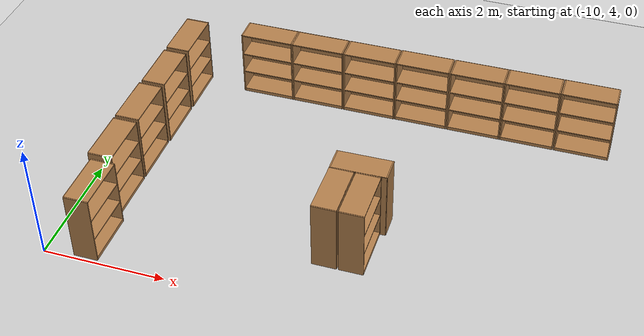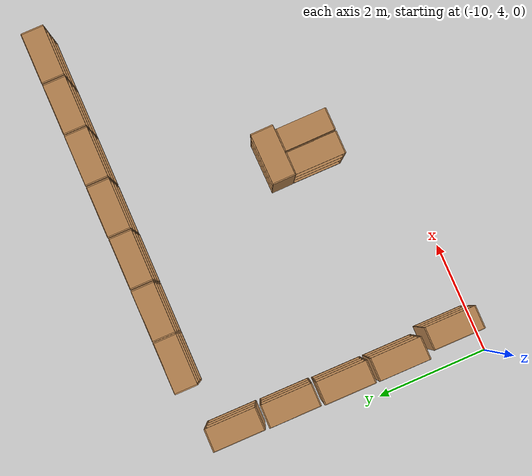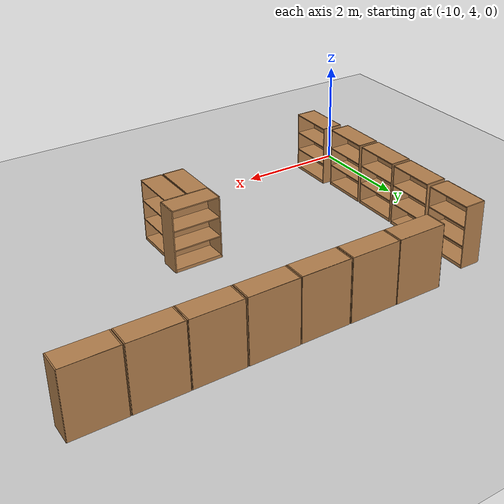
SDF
<sdf version="1.7">
 <world name="default">
  <model name="ground_plane">
   <static>1</static>
   <link name="link">
    <collision name="collision">
     <geometry><plane><normal>0 0 1</normal><size>100 100</size></plane></geometry>
     <surface><friction><ode><mu>100</mu><mu2>50</mu2></ode></friction></surface>
    </collision>
    <visual name="visual">
     <cast_shadows>0</cast_shadows>
     <geometry><plane><normal>0 0 1</normal><size>100 100</size></plane></geometry>
     <material>
      <script><uri>file://media/materials/scripts/gazebo.material</uri><name>Gazebo/Grey</name></script>
     </material>
    </visual>
   </link>
  </model>
  <model name="bookshelf_clone">
   <static>1</static>
   <link name="link">
    <inertial><mass>1</mass></inertial>
    <collision name="back">
     <pose>0 0.005 0.6 0 -0 0</pose>
     <geometry><box><size>0.9 0.01 1.2</size></box></geometry>
    </collision>
    <visual name="visual1">
     <pose>0 0.005 0.6 0 -0 0</pose>
     <geometry><box><size>0.9 0.01 1.2</size></box></geometry>
     <material>
      <script><uri>file://media/materials/scripts/gazebo.material</uri><name>Gazebo/Wood</name></script>
     </material>
    </visual>
    <collision name="left_side">
     <pose>0.45 -0.195 0.6 0 -0 0</pose>
     <geometry><box><size>0.02 0.4 1.2</size></box></geometry>
    </collision>
    <visual name="visual2">
     <pose>0.45 -0.195 0.6 0 -0 0</pose>
     <geometry><box><size>0.02 0.4 1.2</size></box></geometry>
     <material>
      <script><uri>file://media/materials/scripts/gazebo.material</uri><name>Gazebo/Wood</name></script>
     </material>
    </visual>
    <collision name="right_side">
     <pose>-0.45 -0.195 0.6 0 -0 0</pose>
     <geometry><box><size>0.02 0.4 1.2</size></box></geometry>
    </collision>
    <visual name="visual3">
     <pose>-0.45 -0.195 0.6 0 -0 0</pose>
     <geometry><box><size>0.02 0.4 1.2</size></box></geometry>
     <material>
      <script><uri>file://media/materials/scripts/gazebo.material</uri><name>Gazebo/Wood</name></script>
     </material>
    </visual>
    <collision name="bottom">
     <pose>0 -0.195 0.03 0 -0 0</pose>
     <geometry><box><size>0.88 0.4 0.06</size></box></geometry>
    </collision>
    <visual name="visual4">
     <pose>0 -0.195 0.03 0 -0 0</pose>
     <geometry><box><size>0.88 0.4 0.06</size></box></geometry>
     <material>
      <script><uri>file://media/materials/scripts/gazebo.material</uri><name>Gazebo/Wood</name></script>
     </material>
    </visual>
    <collision name="top">
     <pose>0 -0.195 1.19 0 -0 0</pose>
     <geometry><box><size>0.88 0.4 0.02</size></box></geometry>
    </collision>
    <visual name="visual5">
     <pose>0 -0.195 1.19 0 -0 0</pose>
     <geometry><box><size>0.88 0.4 0.02</size></box></geometry>
     <material>
      <script><uri>file://media/materials/scripts/gazebo.material</uri><name>Gazebo/Wood</name></script>
     </material>
    </visual>
    <collision name="low_shelf">
     <pose>0 -0.195 0.43 0 -0 0</pose>
     <geometry><box><size>0.88 0.4 0.02</size></box></geometry>
    </collision>
    <visual name="visual6">
     <pose>0 -0.195 0.43 0 -0 0</pose>
     <geometry><box><size>0.88 0.4 0.02</size></box></geometry>
     <material>
      <script><uri>file://media/materials/scripts/gazebo.material</uri><name>Gazebo/Wood</name></script>
     </material>
    </visual>
    <collision name="high_shelf">
     <pose>0 -0.195 0.8 0 -0 0</pose>
     <geometry><box><size>0.88 0.4 0.02</size></box></geometry>
    </collision>
    <visual name="visual7">
     <pose>0 -0.195 0.8 0 -0 0</pose>
     <geometry><box><size>0.88 0.4 0.02</size></box></geometry>
     <material>
      <script><uri>file://media/materials/scripts/gazebo.material</uri><name>Gazebo/Wood</name></script>
     </material>
    </visual>
   </link>
   <pose>-6.18598 9.11437 0 0 -0 0</pose>
  </model>
  <model name="bookshelf_clone_0_clone_0_clone_clone_6">
   <static>1</static>
   <link name="link">
    <inertial><mass>1</mass></inertial>
    <collision name="back">
     <pose>0 0.005 0.6 0 -0 0</pose>
     <geometry><box><size>0.9 0.01 1.2</size></box></geometry>
    </collision>
    <visual name="visual1">
     <pose>0 0.005 0.6 0 -0 0</pose>
     <geometry><box><size>0.9 0.01 1.2</size></box></geometry>
     <material>
      <script><uri>file://media/materials/scripts/gazebo.material</uri><name>Gazebo/Wood</name></script>
     </material>
    </visual>
    <collision name="left_side">
     <pose>0.45 -0.195 0.6 0 -0 0</pose>
     <geometry><box><size>0.02 0.4 1.2</size></box></geometry>
    </collision>
    <visual name="visual2">
     <pose>0.45 -0.195 0.6 0 -0 0</pose>
     <geometry><box><size>0.02 0.4 1.2</size></box></geometry>
     <material>
      <script><uri>file://media/materials/scripts/gazebo.material</uri><name>Gazebo/Wood</name></script>
     </material>
    </visual>
    <collision name="right_side">
     <pose>-0.45 -0.195 0.6 0 -0 0</pose>
     <geometry><box><size>0.02 0.4 1.2</size></box></geometry>
    </collision>
    <visual name="visual3">
     <pose>-0.45 -0.195 0.6 0 -0 0</pose>
     <geometry><box><size>0.02 0.4 1.2</size></box></geometry>
     <material>
      <script><uri>file://media/materials/scripts/gazebo.material</uri><name>Gazebo/Wood</name></script>
     </material>
    </visual>
    <collision name="bottom">
     <pose>0 -0.195 0.03 0 -0 0</pose>
     <geometry><box><size>0.88 0.4 0.06</size></box></geometry>
    </collision>
    <visual name="visual4">
     <pose>0 -0.195 0.03 0 -0 0</pose>
     <geometry><box><size>0.88 0.4 0.06</size></box></geometry>
     <material>
      <script><uri>file://media/materials/scripts/gazebo.material</uri><name>Gazebo/Wood</name></script>
     </material>
    </visual>
    <collision name="top">
     <pose>0 -0.195 1.19 0 -0 0</pose>
     <geometry><box><size>0.88 0.4 0.02</size></box></geometry>
    </collision>
    <visual name="visual5">
     <pose>0 -0.195 1.19 0 -0 0</pose>
     <geometry><box><size>0.88 0.4 0.02</size></box></geometry>
     <material>
      <script><uri>file://media/materials/scripts/gazebo.material</uri><name>Gazebo/Wood</name></script>
     </material>
    </visual>
    <collision name="low_shelf">
     <pose>0 -0.195 0.43 0 -0 0</pose>
     <geometry><box><size>0.88 0.4 0.02</size></box></geometry>
    </collision>
    <visual name="visual6">
     <pose>0 -0.195 0.43 0 -0 0</pose>
     <geometry><box><size>0.88 0.4 0.02</size></box></geometry>
     <material>
      <script><uri>file://media/materials/scripts/gazebo.material</uri><name>Gazebo/Wood</name></script>
     </material>
    </visual>
    <collision name="high_shelf">
     <pose>0 -0.195 0.8 0 -0 0</pose>
     <geometry><box><size>0.88 0.4 0.02</size></box></geometry>
    </collision>
    <visual name="visual7">
     <pose>0 -0.195 0.8 0 -0 0</pose>
     <geometry><box><size>0.88 0.4 0.02</size></box></geometry>
     <material>
      <script><uri>file://media/materials/scripts/gazebo.material</uri><name>Gazebo/Wood</name></script>
     </material>
    </visual>
   </link>
   <pose>-9.5191 4.52003 0 0 -0 1.56663</pose>
  </model>
  <model name="bookshelf_clone_0_clone_0_clone_clone_7">
   <static>1</static>
   <link name="link">
    <inertial><mass>1</mass></inertial>
    <collision name="back">
     <pose>0 0.005 0.6 0 -0 0</pose>
     <geometry><box><size>0.9 0.01 1.2</size></box></geometry>
    </collision>
    <visual name="visual1">
     <pose>0 0.005 0.6 0 -0 0</pose>
     <geometry><box><size>0.9 0.01 1.2</size></box></geometry>
     <material>
      <script><uri>file://media/materials/scripts/gazebo.material</uri><name>Gazebo/Wood</name></script>
     </material>
    </visual>
    <collision name="left_side">
     <pose>0.45 -0.195 0.6 0 -0 0</pose>
     <geometry><box><size>0.02 0.4 1.2</size></box></geometry>
    </collision>
    <visual name="visual2">
     <pose>0.45 -0.195 0.6 0 -0 0</pose>
     <geometry><box><size>0.02 0.4 1.2</size></box></geometry>
     <material>
      <script><uri>file://media/materials/scripts/gazebo.material</uri><name>Gazebo/Wood</name></script>
     </material>
    </visual>
    <collision name="right_side">
     <pose>-0.45 -0.195 0.6 0 -0 0</pose>
     <geometry><box><size>0.02 0.4 1.2</size></box></geometry>
    </collision>
    <visual name="visual3">
     <pose>-0.45 -0.195 0.6 0 -0 0</pose>
     <geometry><box><size>0.02 0.4 1.2</size></box></geometry>
     <material>
      <script><uri>file://media/materials/scripts/gazebo.material</uri><name>Gazebo/Wood</name></script>
     </material>
    </visual>
    <collision name="bottom">
     <pose>0 -0.195 0.03 0 -0 0</pose>
     <geometry><box><size>0.88 0.4 0.06</size></box></geometry>
    </collision>
    <visual name="visual4">
     <pose>0 -0.195 0.03 0 -0 0</pose>
     <geometry><box><size>0.88 0.4 0.06</size></box></geometry>
     <material>
      <script><uri>file://media/materials/scripts/gazebo.material</uri><name>Gazebo/Wood</name></script>
     </material>
    </visual>
    <collision name="top">
     <pose>0 -0.195 1.19 0 -0 0</pose>
     <geometry><box><size>0.88 0.4 0.02</size></box></geometry>
    </collision>
    <visual name="visual5">
     <pose>0 -0.195 1.19 0 -0 0</pose>
     <geometry><box><size>0.88 0.4 0.02</size></box></geometry>
     <material>
      <script><uri>file://media/materials/scripts/gazebo.material</uri><name>Gazebo/Wood</name></script>
     </material>
    </visual>
    <collision name="low_shelf">
     <pose>0 -0.195 0.43 0 -0 0</pose>
     <geometry><box><size>0.88 0.4 0.02</size></box></geometry>
    </collision>
    <visual name="visual6">
     <pose>0 -0.195 0.43 0 -0 0</pose>
     <geometry><box><size>0.88 0.4 0.02</size></box></geometry>
     <material>
      <script><uri>file://media/materials/scripts/gazebo.material</uri><name>Gazebo/Wood</name></script>
     </material>
    </visual>
    <collision name="high_shelf">
     <pose>0 -0.195 0.8 0 -0 0</pose>
     <geometry><box><size>0.88 0.4 0.02</size></box></geometry>
    </collision>
    <visual name="visual7">
     <pose>0 -0.195 0.8 0 -0 0</pose>
     <geometry><box><size>0.88 0.4 0.02</size></box></geometry>
     <material>
      <script><uri>file://media/materials/scripts/gazebo.material</uri><name>Gazebo/Wood</name></script>
     </material>
    </visual>
   </link>
   <pose>-9.62218 5.53679 0 0 -0 1.56663</pose>
  </model>
  <model name="bookshelf_clone_0_clone_0_clone_clone_8">
   <static>1</static>
   <link name="link">
    <inertial><mass>1</mass></inertial>
    <collision name="back">
     <pose>0 0.005 0.6 0 -0 0</pose>
     <geometry><box><size>0.9 0.01 1.2</size></box></geometry>
    </collision>
    <visual name="visual1">
     <pose>0 0.005 0.6 0 -0 0</pose>
     <geometry><box><size>0.9 0.01 1.2</size></box></geometry>
     <material>
      <script><uri>file://media/materials/scripts/gazebo.material</uri><name>Gazebo/Wood</name></script>
     </material>
    </visual>
    <collision name="left_side">
     <pose>0.45 -0.195 0.6 0 -0 0</pose>
     <geometry><box><size>0.02 0.4 1.2</size></box></geometry>
    </collision>
    <visual name="visual2">
     <pose>0.45 -0.195 0.6 0 -0 0</pose>
     <geometry><box><size>0.02 0.4 1.2</size></box></geometry>
     <material>
      <script><uri>file://media/materials/scripts/gazebo.material</uri><name>Gazebo/Wood</name></script>
     </material>
    </visual>
    <collision name="right_side">
     <pose>-0.45 -0.195 0.6 0 -0 0</pose>
     <geometry><box><size>0.02 0.4 1.2</size></box></geometry>
    </collision>
    <visual name="visual3">
     <pose>-0.45 -0.195 0.6 0 -0 0</pose>
     <geometry><box><size>0.02 0.4 1.2</size></box></geometry>
     <material>
      <script><uri>file://media/materials/scripts/gazebo.material</uri><name>Gazebo/Wood</name></script>
     </material>
    </visual>
    <collision name="bottom">
     <pose>0 -0.195 0.03 0 -0 0</pose>
     <geometry><box><size>0.88 0.4 0.06</size></box></geometry>
    </collision>
    <visual name="visual4">
     <pose>0 -0.195 0.03 0 -0 0</pose>
     <geometry><box><size>0.88 0.4 0.06</size></box></geometry>
     <material>
      <script><uri>file://media/materials/scripts/gazebo.material</uri><name>Gazebo/Wood</name></script>
     </material>
    </visual>
    <collision name="top">
     <pose>0 -0.195 1.19 0 -0 0</pose>
     <geometry><box><size>0.88 0.4 0.02</size></box></geometry>
    </collision>
    <visual name="visual5">
     <pose>0 -0.195 1.19 0 -0 0</pose>
     <geometry><box><size>0.88 0.4 0.02</size></box></geometry>
     <material>
      <script><uri>file://media/materials/scripts/gazebo.material</uri><name>Gazebo/Wood</name></script>
     </material>
    </visual>
    <collision name="low_shelf">
     <pose>0 -0.195 0.43 0 -0 0</pose>
     <geometry><box><size>0.88 0.4 0.02</size></box></geometry>
    </collision>
    <visual name="visual6">
     <pose>0 -0.195 0.43 0 -0 0</pose>
     <geometry><box><size>0.88 0.4 0.02</size></box></geometry>
     <material>
      <script><uri>file://media/materials/scripts/gazebo.material</uri><name>Gazebo/Wood</name></script>
     </material>
    </visual>
    <collision name="high_shelf">
     <pose>0 -0.195 0.8 0 -0 0</pose>
     <geometry><box><size>0.88 0.4 0.02</size></box></geometry>
    </collision>
    <visual name="visual7">
     <pose>0 -0.195 0.8 0 -0 0</pose>
     <geometry><box><size>0.88 0.4 0.02</size></box></geometry>
     <material>
      <script><uri>file://media/materials/scripts/gazebo.material</uri><name>Gazebo/Wood</name></script>
     </material>
    </visual>
   </link>
   <pose>-9.61811 6.50329 0 0 -0 1.56663</pose>
  </model>
  <model name="bookshelf_clone_0_clone_0_clone_clone_9">
   <static>1</static>
   <link name="link">
    <inertial><mass>1</mass></inertial>
    <collision name="back">
     <pose>0 0.005 0.6 0 -0 0</pose>
     <geometry><box><size>0.9 0.01 1.2</size></box></geometry>
    </collision>
    <visual name="visual1">
     <pose>0 0.005 0.6 0 -0 0</pose>
     <geometry><box><size>0.9 0.01 1.2</size></box></geometry>
     <material>
      <script><uri>file://media/materials/scripts/gazebo.material</uri><name>Gazebo/Wood</name></script>
     </material>
    </visual>
    <collision name="left_side">
     <pose>0.45 -0.195 0.6 0 -0 0</pose>
     <geometry><box><size>0.02 0.4 1.2</size></box></geometry>
    </collision>
    <visual name="visual2">
     <pose>0.45 -0.195 0.6 0 -0 0</pose>
     <geometry><box><size>0.02 0.4 1.2</size></box></geometry>
     <material>
      <script><uri>file://media/materials/scripts/gazebo.material</uri><name>Gazebo/Wood</name></script>
     </material>
    </visual>
    <collision name="right_side">
     <pose>-0.45 -0.195 0.6 0 -0 0</pose>
     <geometry><box><size>0.02 0.4 1.2</size></box></geometry>
    </collision>
    <visual name="visual3">
     <pose>-0.45 -0.195 0.6 0 -0 0</pose>
     <geometry><box><size>0.02 0.4 1.2</size></box></geometry>
     <material>
      <script><uri>file://media/materials/scripts/gazebo.material</uri><name>Gazebo/Wood</name></script>
     </material>
    </visual>
    <collision name="bottom">
     <pose>0 -0.195 0.03 0 -0 0</pose>
     <geometry><box><size>0.88 0.4 0.06</size></box></geometry>
    </collision>
    <visual name="visual4">
     <pose>0 -0.195 0.03 0 -0 0</pose>
     <geometry><box><size>0.88 0.4 0.06</size></box></geometry>
     <material>
      <script><uri>file://media/materials/scripts/gazebo.material</uri><name>Gazebo/Wood</name></script>
     </material>
    </visual>
    <collision name="top">
     <pose>0 -0.195 1.19 0 -0 0</pose>
     <geometry><box><size>0.88 0.4 0.02</size></box></geometry>
    </collision>
    <visual name="visual5">
     <pose>0 -0.195 1.19 0 -0 0</pose>
     <geometry><box><size>0.88 0.4 0.02</size></box></geometry>
     <material>
      <script><uri>file://media/materials/scripts/gazebo.material</uri><name>Gazebo/Wood</name></script>
     </material>
    </visual>
    <collision name="low_shelf">
     <pose>0 -0.195 0.43 0 -0 0</pose>
     <geometry><box><size>0.88 0.4 0.02</size></box></geometry>
    </collision>
    <visual name="visual6">
     <pose>0 -0.195 0.43 0 -0 0</pose>
     <geometry><box><size>0.88 0.4 0.02</size></box></geometry>
     <material>
      <script><uri>file://media/materials/scripts/gazebo.material</uri><name>Gazebo/Wood</name></script>
     </material>
    </visual>
    <collision name="high_shelf">
     <pose>0 -0.195 0.8 0 -0 0</pose>
     <geometry><box><size>0.88 0.4 0.02</size></box></geometry>
    </collision>
    <visual name="visual7">
     <pose>0 -0.195 0.8 0 -0 0</pose>
     <geometry><box><size>0.88 0.4 0.02</size></box></geometry>
     <material>
      <script><uri>file://media/materials/scripts/gazebo.material</uri><name>Gazebo/Wood</name></script>
     </material>
    </visual>
   </link>
   <pose>-9.59936 7.47286 0 0 -0 1.56663</pose>
  </model>
  <model name="bookshelf_clone_0_clone_0_clone_clone_10">
   <static>1</static>
   <link name="link">
    <inertial><mass>1</mass></inertial>
    <collision name="back">
     <pose>0 0.005 0.6 0 -0 0</pose>
     <geometry><box><size>0.9 0.01 1.2</size></box></geometry>
    </collision>
    <visual name="visual1">
     <pose>0 0.005 0.6 0 -0 0</pose>
     <geometry><box><size>0.9 0.01 1.2</size></box></geometry>
     <material>
      <script><uri>file://media/materials/scripts/gazebo.material</uri><name>Gazebo/Wood</name></script>
     </material>
    </visual>
    <collision name="left_side">
     <pose>0.45 -0.195 0.6 0 -0 0</pose>
     <geometry><box><size>0.02 0.4 1.2</size></box></geometry>
    </collision>
    <visual name="visual2">
     <pose>0.45 -0.195 0.6 0 -0 0</pose>
     <geometry><box><size>0.02 0.4 1.2</size></box></geometry>
     <material>
      <script><uri>file://media/materials/scripts/gazebo.material</uri><name>Gazebo/Wood</name></script>
     </material>
    </visual>
    <collision name="right_side">
     <pose>-0.45 -0.195 0.6 0 -0 0</pose>
     <geometry><box><size>0.02 0.4 1.2</size></box></geometry>
    </collision>
    <visual name="visual3">
     <pose>-0.45 -0.195 0.6 0 -0 0</pose>
     <geometry><box><size>0.02 0.4 1.2</size></box></geometry>
     <material>
      <script><uri>file://media/materials/scripts/gazebo.material</uri><name>Gazebo/Wood</name></script>
     </material>
    </visual>
    <collision name="bottom">
     <pose>0 -0.195 0.03 0 -0 0</pose>
     <geometry><box><size>0.88 0.4 0.06</size></box></geometry>
    </collision>
    <visual name="visual4">
     <pose>0 -0.195 0.03 0 -0 0</pose>
     <geometry><box><size>0.88 0.4 0.06</size></box></geometry>
     <material>
      <script><uri>file://media/materials/scripts/gazebo.material</uri><name>Gazebo/Wood</name></script>
     </material>
    </visual>
    <collision name="top">
     <pose>0 -0.195 1.19 0 -0 0</pose>
     <geometry><box><size>0.88 0.4 0.02</size></box></geometry>
    </collision>
    <visual name="visual5">
     <pose>0 -0.195 1.19 0 -0 0</pose>
     <geometry><box><size>0.88 0.4 0.02</size></box></geometry>
     <material>
      <script><uri>file://media/materials/scripts/gazebo.material</uri><name>Gazebo/Wood</name></script>
     </material>
    </visual>
    <collision name="low_shelf">
     <pose>0 -0.195 0.43 0 -0 0</pose>
     <geometry><box><size>0.88 0.4 0.02</size></box></geometry>
    </collision>
    <visual name="visual6">
     <pose>0 -0.195 0.43 0 -0 0</pose>
     <geometry><box><size>0.88 0.4 0.02</size></box></geometry>
     <material>
      <script><uri>file://media/materials/scripts/gazebo.material</uri><name>Gazebo/Wood</name></script>
     </material>
    </visual>
    <collision name="high_shelf">
     <pose>0 -0.195 0.8 0 -0 0</pose>
     <geometry><box><size>0.88 0.4 0.02</size></box></geometry>
    </collision>
    <visual name="visual7">
     <pose>0 -0.195 0.8 0 -0 0</pose>
     <geometry><box><size>0.88 0.4 0.02</size></box></geometry>
     <material>
      <script><uri>file://media/materials/scripts/gazebo.material</uri><name>Gazebo/Wood</name></script>
     </material>
    </visual>
   </link>
   <pose>-9.58884 8.45851 0 0 -0 1.56663</pose>
  </model>
  <model name="bookshelf_clone_clone">
   <static>1</static>
   <link name="link">
    <inertial><mass>1</mass></inertial>
    <collision name="back">
     <pose>0 0.005 0.6 0 -0 0</pose>
     <geometry><box><size>0.9 0.01 1.2</size></box></geometry>
    </collision>
    <visual name="visual1">
     <pose>0 0.005 0.6 0 -0 0</pose>
     <geometry><box><size>0.9 0.01 1.2</size></box></geometry>
     <material>
      <script><uri>file://media/materials/scripts/gazebo.material</uri><name>Gazebo/Wood</name></script>
     </material>
    </visual>
    <collision name="left_side">
     <pose>0.45 -0.195 0.6 0 -0 0</pose>
     <geometry><box><size>0.02 0.4 1.2</size></box></geometry>
    </collision>
    <visual name="visual2">
     <pose>0.45 -0.195 0.6 0 -0 0</pose>
     <geometry><box><size>0.02 0.4 1.2</size></box></geometry>
     <material>
      <script><uri>file://media/materials/scripts/gazebo.material</uri><name>Gazebo/Wood</name></script>
     </material>
    </visual>
    <collision name="right_side">
     <pose>-0.45 -0.195 0.6 0 -0 0</pose>
     <geometry><box><size>0.02 0.4 1.2</size></box></geometry>
    </collision>
    <visual name="visual3">
     <pose>-0.45 -0.195 0.6 0 -0 0</pose>
     <geometry><box><size>0.02 0.4 1.2</size></box></geometry>
     <material>
      <script><uri>file://media/materials/scripts/gazebo.material</uri><name>Gazebo/Wood</name></script>
     </material>
    </visual>
    <collision name="bottom">
     <pose>0 -0.195 0.03 0 -0 0</pose>
     <geometry><box><size>0.88 0.4 0.06</size></box></geometry>
    </collision>
    <visual name="visual4">
     <pose>0 -0.195 0.03 0 -0 0</pose>
     <geometry><box><size>0.88 0.4 0.06</size></box></geometry>
     <material>
      <script><uri>file://media/materials/scripts/gazebo.material</uri><name>Gazebo/Wood</name></script>
     </material>
    </visual>
    <collision name="top">
     <pose>0 -0.195 1.19 0 -0 0</pose>
     <geometry><box><size>0.88 0.4 0.02</size></box></geometry>
    </collision>
    <visual name="visual5">
     <pose>0 -0.195 1.19 0 -0 0</pose>
     <geometry><box><size>0.88 0.4 0.02</size></box></geometry>
     <material>
      <script><uri>file://media/materials/scripts/gazebo.material</uri><name>Gazebo/Wood</name></script>
     </material>
    </visual>
    <collision name="low_shelf">
     <pose>0 -0.195 0.43 0 -0 0</pose>
     <geometry><box><size>0.88 0.4 0.02</size></box></geometry>
    </collision>
    <visual name="visual6">
     <pose>0 -0.195 0.43 0 -0 0</pose>
     <geometry><box><size>0.88 0.4 0.02</size></box></geometry>
     <material>
      <script><uri>file://media/materials/scripts/gazebo.material</uri><name>Gazebo/Wood</name></script>
     </material>
    </visual>
    <collision name="high_shelf">
     <pose>0 -0.195 0.8 0 -0 0</pose>
     <geometry><box><size>0.88 0.4 0.02</size></box></geometry>
    </collision>
    <visual name="visual7">
     <pose>0 -0.195 0.8 0 -0 0</pose>
     <geometry><box><size>0.88 0.4 0.02</size></box></geometry>
     <material>
      <script><uri>file://media/materials/scripts/gazebo.material</uri><name>Gazebo/Wood</name></script>
     </material>
    </visual>
   </link>
   <pose>-8.0406 9.11667 0 0 -0 0</pose>
  </model>
  <model name="bookshelf_clone_clone_0">
   <static>1</static>
   <link name="link">
    <inertial><mass>1</mass></inertial>
    <collision name="back">
     <pose>0 0.005 0.6 0 -0 0</pose>
     <geometry><box><size>0.9 0.01 1.2</size></box></geometry>
    </collision>
    <visual name="visual1">
     <pose>0 0.005 0.6 0 -0 0</pose>
     <geometry><box><size>0.9 0.01 1.2</size></box></geometry>
     <material>
      <script><uri>file://media/materials/scripts/gazebo.material</uri><name>Gazebo/Wood</name></script>
     </material>
    </visual>
    <collision name="left_side">
     <pose>0.45 -0.195 0.6 0 -0 0</pose>
     <geometry><box><size>0.02 0.4 1.2</size></box></geometry>
    </collision>
    <visual name="visual2">
     <pose>0.45 -0.195 0.6 0 -0 0</pose>
     <geometry><box><size>0.02 0.4 1.2</size></box></geometry>
     <material>
      <script><uri>file://media/materials/scripts/gazebo.material</uri><name>Gazebo/Wood</name></script>
     </material>
    </visual>
    <collision name="right_side">
     <pose>-0.45 -0.195 0.6 0 -0 0</pose>
     <geometry><box><size>0.02 0.4 1.2</size></box></geometry>
    </collision>
    <visual name="visual3">
     <pose>-0.45 -0.195 0.6 0 -0 0</pose>
     <geometry><box><size>0.02 0.4 1.2</size></box></geometry>
     <material>
      <script><uri>file://media/materials/scripts/gazebo.material</uri><name>Gazebo/Wood</name></script>
     </material>
    </visual>
    <collision name="bottom">
     <pose>0 -0.195 0.03 0 -0 0</pose>
     <geometry><box><size>0.88 0.4 0.06</size></box></geometry>
    </collision>
    <visual name="visual4">
     <pose>0 -0.195 0.03 0 -0 0</pose>
     <geometry><box><size>0.88 0.4 0.06</size></box></geometry>
     <material>
      <script><uri>file://media/materials/scripts/gazebo.material</uri><name>Gazebo/Wood</name></script>
     </material>
    </visual>
    <collision name="top">
     <pose>0 -0.195 1.19 0 -0 0</pose>
     <geometry><box><size>0.88 0.4 0.02</size></box></geometry>
    </collision>
    <visual name="visual5">
     <pose>0 -0.195 1.19 0 -0 0</pose>
     <geometry><box><size>0.88 0.4 0.02</size></box></geometry>
     <material>
      <script><uri>file://media/materials/scripts/gazebo.material</uri><name>Gazebo/Wood</name></script>
     </material>
    </visual>
    <collision name="low_shelf">
     <pose>0 -0.195 0.43 0 -0 0</pose>
     <geometry><box><size>0.88 0.4 0.02</size></box></geometry>
    </collision>
    <visual name="visual6">
     <pose>0 -0.195 0.43 0 -0 0</pose>
     <geometry><box><size>0.88 0.4 0.02</size></box></geometry>
     <material>
      <script><uri>file://media/materials/scripts/gazebo.material</uri><name>Gazebo/Wood</name></script>
     </material>
    </visual>
    <collision name="high_shelf">
     <pose>0 -0.195 0.8 0 -0 0</pose>
     <geometry><box><size>0.88 0.4 0.02</size></box></geometry>
    </collision>
    <visual name="visual7">
     <pose>0 -0.195 0.8 0 -0 0</pose>
     <geometry><box><size>0.88 0.4 0.02</size></box></geometry>
     <material>
      <script><uri>file://media/materials/scripts/gazebo.material</uri><name>Gazebo/Wood</name></script>
     </material>
    </visual>
   </link>
   <pose>-7.11816 9.11591 0 0 -0 0</pose>
  </model>
  <model name="bookshelf_clone_clone_1">
   <static>1</static>
   <link name="link">
    <inertial><mass>1</mass></inertial>
    <collision name="back">
     <pose>0 0.005 0.6 0 -0 0</pose>
     <geometry><box><size>0.9 0.01 1.2</size></box></geometry>
    </collision>
    <visual name="visual1">
     <pose>0 0.005 0.6 0 -0 0</pose>
     <geometry><box><size>0.9 0.01 1.2</size></box></geometry>
     <material>
      <script><uri>file://media/materials/scripts/gazebo.material</uri><name>Gazebo/Wood</name></script>
     </material>
    </visual>
    <collision name="left_side">
     <pose>0.45 -0.195 0.6 0 -0 0</pose>
     <geometry><box><size>0.02 0.4 1.2</size></box></geometry>
    </collision>
    <visual name="visual2">
     <pose>0.45 -0.195 0.6 0 -0 0</pose>
     <geometry><box><size>0.02 0.4 1.2</size></box></geometry>
     <material>
      <script><uri>file://media/materials/scripts/gazebo.material</uri><name>Gazebo/Wood</name></script>
     </material>
    </visual>
    <collision name="right_side">
     <pose>-0.45 -0.195 0.6 0 -0 0</pose>
     <geometry><box><size>0.02 0.4 1.2</size></box></geometry>
    </collision>
    <visual name="visual3">
     <pose>-0.45 -0.195 0.6 0 -0 0</pose>
     <geometry><box><size>0.02 0.4 1.2</size></box></geometry>
     <material>
      <script><uri>file://media/materials/scripts/gazebo.material</uri><name>Gazebo/Wood</name></script>
     </material>
    </visual>
    <collision name="bottom">
     <pose>0 -0.195 0.03 0 -0 0</pose>
     <geometry><box><size>0.88 0.4 0.06</size></box></geometry>
    </collision>
    <visual name="visual4">
     <pose>0 -0.195 0.03 0 -0 0</pose>
     <geometry><box><size>0.88 0.4 0.06</size></box></geometry>
     <material>
      <script><uri>file://media/materials/scripts/gazebo.material</uri><name>Gazebo/Wood</name></script>
     </material>
    </visual>
    <collision name="top">
     <pose>0 -0.195 1.19 0 -0 0</pose>
     <geometry><box><size>0.88 0.4 0.02</size></box></geometry>
    </collision>
    <visual name="visual5">
     <pose>0 -0.195 1.19 0 -0 0</pose>
     <geometry><box><size>0.88 0.4 0.02</size></box></geometry>
     <material>
      <script><uri>file://media/materials/scripts/gazebo.material</uri><name>Gazebo/Wood</name></script>
     </material>
    </visual>
    <collision name="low_shelf">
     <pose>0 -0.195 0.43 0 -0 0</pose>
     <geometry><box><size>0.88 0.4 0.02</size></box></geometry>
    </collision>
    <visual name="visual6">
     <pose>0 -0.195 0.43 0 -0 0</pose>
     <geometry><box><size>0.88 0.4 0.02</size></box></geometry>
     <material>
      <script><uri>file://media/materials/scripts/gazebo.material</uri><name>Gazebo/Wood</name></script>
     </material>
    </visual>
    <collision name="high_shelf">
     <pose>0 -0.195 0.8 0 -0 0</pose>
     <geometry><box><size>0.88 0.4 0.02</size></box></geometry>
    </collision>
    <visual name="visual7">
     <pose>0 -0.195 0.8 0 -0 0</pose>
     <geometry><box><size>0.88 0.4 0.02</size></box></geometry>
     <material>
      <script><uri>file://media/materials/scripts/gazebo.material</uri><name>Gazebo/Wood</name></script>
     </material>
    </visual>
   </link>
   <pose>-5.2584 9.12016 0 0 -0 0</pose>
  </model>
  <model name="bookshelf_clone_clone_2">
   <static>1</static>
   <link name="link">
    <inertial><mass>1</mass></inertial>
    <collision name="back">
     <pose>0 0.005 0.6 0 -0 0</pose>
     <geometry><box><size>0.9 0.01 1.2</size></box></geometry>
    </collision>
    <visual name="visual1">
     <pose>0 0.005 0.6 0 -0 0</pose>
     <geometry><box><size>0.9 0.01 1.2</size></box></geometry>
     <material>
      <script><uri>file://media/materials/scripts/gazebo.material</uri><name>Gazebo/Wood</name></script>
     </material>
    </visual>
    <collision name="left_side">
     <pose>0.45 -0.195 0.6 0 -0 0</pose>
     <geometry><box><size>0.02 0.4 1.2</size></box></geometry>
    </collision>
    <visual name="visual2">
     <pose>0.45 -0.195 0.6 0 -0 0</pose>
     <geometry><box><size>0.02 0.4 1.2</size></box></geometry>
     <material>
      <script><uri>file://media/materials/scripts/gazebo.material</uri><name>Gazebo/Wood</name></script>
     </material>
    </visual>
    <collision name="right_side">
     <pose>-0.45 -0.195 0.6 0 -0 0</pose>
     <geometry><box><size>0.02 0.4 1.2</size></box></geometry>
    </collision>
    <visual name="visual3">
     <pose>-0.45 -0.195 0.6 0 -0 0</pose>
     <geometry><box><size>0.02 0.4 1.2</size></box></geometry>
     <material>
      <script><uri>file://media/materials/scripts/gazebo.material</uri><name>Gazebo/Wood</name></script>
     </material>
    </visual>
    <collision name="bottom">
     <pose>0 -0.195 0.03 0 -0 0</pose>
     <geometry><box><size>0.88 0.4 0.06</size></box></geometry>
    </collision>
    <visual name="visual4">
     <pose>0 -0.195 0.03 0 -0 0</pose>
     <geometry><box><size>0.88 0.4 0.06</size></box></geometry>
     <material>
      <script><uri>file://media/materials/scripts/gazebo.material</uri><name>Gazebo/Wood</name></script>
     </material>
    </visual>
    <collision name="top">
     <pose>0 -0.195 1.19 0 -0 0</pose>
     <geometry><box><size>0.88 0.4 0.02</size></box></geometry>
    </collision>
    <visual name="visual5">
     <pose>0 -0.195 1.19 0 -0 0</pose>
     <geometry><box><size>0.88 0.4 0.02</size></box></geometry>
     <material>
      <script><uri>file://media/materials/scripts/gazebo.material</uri><name>Gazebo/Wood</name></script>
     </material>
    </visual>
    <collision name="low_shelf">
     <pose>0 -0.195 0.43 0 -0 0</pose>
     <geometry><box><size>0.88 0.4 0.02</size></box></geometry>
    </collision>
    <visual name="visual6">
     <pose>0 -0.195 0.43 0 -0 0</pose>
     <geometry><box><size>0.88 0.4 0.02</size></box></geometry>
     <material>
      <script><uri>file://media/materials/scripts/gazebo.material</uri><name>Gazebo/Wood</name></script>
     </material>
    </visual>
    <collision name="high_shelf">
     <pose>0 -0.195 0.8 0 -0 0</pose>
     <geometry><box><size>0.88 0.4 0.02</size></box></geometry>
    </collision>
    <visual name="visual7">
     <pose>0 -0.195 0.8 0 -0 0</pose>
     <geometry><box><size>0.88 0.4 0.02</size></box></geometry>
     <material>
      <script><uri>file://media/materials/scripts/gazebo.material</uri><name>Gazebo/Wood</name></script>
     </material>
    </visual>
   </link>
   <pose>-4.32358 9.12072 0 0 -0 0</pose>
  </model>
  <model name="bookshelf_clone_clone_3">
   <static>1</static>
   <link name="link">
    <inertial><mass>1</mass></inertial>
    <collision name="back">
     <pose>0 0.005 0.6 0 -0 0</pose>
     <geometry><box><size>0.9 0.01 1.2</size></box></geometry>
    </collision>
    <visual name="visual1">
     <pose>0 0.005 0.6 0 -0 0</pose>
     <geometry><box><size>0.9 0.01 1.2</size></box></geometry>
     <material>
      <script><uri>file://media/materials/scripts/gazebo.material</uri><name>Gazebo/Wood</name></script>
     </material>
    </visual>
    <collision name="left_side">
     <pose>0.45 -0.195 0.6 0 -0 0</pose>
     <geometry><box><size>0.02 0.4 1.2</size></box></geometry>
    </collision>
    <visual name="visual2">
     <pose>0.45 -0.195 0.6 0 -0 0</pose>
     <geometry><box><size>0.02 0.4 1.2</size></box></geometry>
     <material>
      <script><uri>file://media/materials/scripts/gazebo.material</uri><name>Gazebo/Wood</name></script>
     </material>
    </visual>
    <collision name="right_side">
     <pose>-0.45 -0.195 0.6 0 -0 0</pose>
     <geometry><box><size>0.02 0.4 1.2</size></box></geometry>
    </collision>
    <visual name="visual3">
     <pose>-0.45 -0.195 0.6 0 -0 0</pose>
     <geometry><box><size>0.02 0.4 1.2</size></box></geometry>
     <material>
      <script><uri>file://media/materials/scripts/gazebo.material</uri><name>Gazebo/Wood</name></script>
     </material>
    </visual>
    <collision name="bottom">
     <pose>0 -0.195 0.03 0 -0 0</pose>
     <geometry><box><size>0.88 0.4 0.06</size></box></geometry>
    </collision>
    <visual name="visual4">
     <pose>0 -0.195 0.03 0 -0 0</pose>
     <geometry><box><size>0.88 0.4 0.06</size></box></geometry>
     <material>
      <script><uri>file://media/materials/scripts/gazebo.material</uri><name>Gazebo/Wood</name></script>
     </material>
    </visual>
    <collision name="top">
     <pose>0 -0.195 1.19 0 -0 0</pose>
     <geometry><box><size>0.88 0.4 0.02</size></box></geometry>
    </collision>
    <visual name="visual5">
     <pose>0 -0.195 1.19 0 -0 0</pose>
     <geometry><box><size>0.88 0.4 0.02</size></box></geometry>
     <material>
      <script><uri>file://media/materials/scripts/gazebo.material</uri><name>Gazebo/Wood</name></script>
     </material>
    </visual>
    <collision name="low_shelf">
     <pose>0 -0.195 0.43 0 -0 0</pose>
     <geometry><box><size>0.88 0.4 0.02</size></box></geometry>
    </collision>
    <visual name="visual6">
     <pose>0 -0.195 0.43 0 -0 0</pose>
     <geometry><box><size>0.88 0.4 0.02</size></box></geometry>
     <material>
      <script><uri>file://media/materials/scripts/gazebo.material</uri><name>Gazebo/Wood</name></script>
     </material>
    </visual>
    <collision name="high_shelf">
     <pose>0 -0.195 0.8 0 -0 0</pose>
     <geometry><box><size>0.88 0.4 0.02</size></box></geometry>
    </collision>
    <visual name="visual7">
     <pose>0 -0.195 0.8 0 -0 0</pose>
     <geometry><box><size>0.88 0.4 0.02</size></box></geometry>
     <material>
      <script><uri>file://media/materials/scripts/gazebo.material</uri><name>Gazebo/Wood</name></script>
     </material>
    </visual>
   </link>
   <pose>-3.39664 9.12165 0 0 -0 0</pose>
  </model>
  <model name="bookshelf_clone_clone_4">
   <static>1</static>
   <link name="link">
    <inertial><mass>1</mass></inertial>
    <collision name="back">
     <pose>0 0.005 0.6 0 -0 0</pose>
     <geometry><box><size>0.9 0.01 1.2</size></box></geometry>
    </collision>
    <visual name="visual1">
     <pose>0 0.005 0.6 0 -0 0</pose>
     <geometry><box><size>0.9 0.01 1.2</size></box></geometry>
     <material>
      <script><uri>file://media/materials/scripts/gazebo.material</uri><name>Gazebo/Wood</name></script>
     </material>
    </visual>
    <collision name="left_side">
     <pose>0.45 -0.195 0.6 0 -0 0</pose>
     <geometry><box><size>0.02 0.4 1.2</size></box></geometry>
    </collision>
    <visual name="visual2">
     <pose>0.45 -0.195 0.6 0 -0 0</pose>
     <geometry><box><size>0.02 0.4 1.2</size></box></geometry>
     <material>
      <script><uri>file://media/materials/scripts/gazebo.material</uri><name>Gazebo/Wood</name></script>
     </material>
    </visual>
    <collision name="right_side">
     <pose>-0.45 -0.195 0.6 0 -0 0</pose>
     <geometry><box><size>0.02 0.4 1.2</size></box></geometry>
    </collision>
    <visual name="visual3">
     <pose>-0.45 -0.195 0.6 0 -0 0</pose>
     <geometry><box><size>0.02 0.4 1.2</size></box></geometry>
     <material>
      <script><uri>file://media/materials/scripts/gazebo.material</uri><name>Gazebo/Wood</name></script>
     </material>
    </visual>
    <collision name="bottom">
     <pose>0 -0.195 0.03 0 -0 0</pose>
     <geometry><box><size>0.88 0.4 0.06</size></box></geometry>
    </collision>
    <visual name="visual4">
     <pose>0 -0.195 0.03 0 -0 0</pose>
     <geometry><box><size>0.88 0.4 0.06</size></box></geometry>
     <material>
      <script><uri>file://media/materials/scripts/gazebo.material</uri><name>Gazebo/Wood</name></script>
     </material>
    </visual>
    <collision name="top">
     <pose>0 -0.195 1.19 0 -0 0</pose>
     <geometry><box><size>0.88 0.4 0.02</size></box></geometry>
    </collision>
    <visual name="visual5">
     <pose>0 -0.195 1.19 0 -0 0</pose>
     <geometry><box><size>0.88 0.4 0.02</size></box></geometry>
     <material>
      <script><uri>file://media/materials/scripts/gazebo.material</uri><name>Gazebo/Wood</name></script>
     </material>
    </visual>
    <collision name="low_shelf">
     <pose>0 -0.195 0.43 0 -0 0</pose>
     <geometry><box><size>0.88 0.4 0.02</size></box></geometry>
    </collision>
    <visual name="visual6">
     <pose>0 -0.195 0.43 0 -0 0</pose>
     <geometry><box><size>0.88 0.4 0.02</size></box></geometry>
     <material>
      <script><uri>file://media/materials/scripts/gazebo.material</uri><name>Gazebo/Wood</name></script>
     </material>
    </visual>
    <collision name="high_shelf">
     <pose>0 -0.195 0.8 0 -0 0</pose>
     <geometry><box><size>0.88 0.4 0.02</size></box></geometry>
    </collision>
    <visual name="visual7">
     <pose>0 -0.195 0.8 0 -0 0</pose>
     <geometry><box><size>0.88 0.4 0.02</size></box></geometry>
     <material>
      <script><uri>file://media/materials/scripts/gazebo.material</uri><name>Gazebo/Wood</name></script>
     </material>
    </visual>
   </link>
   <pose>-2.46519 9.12351 0 0 -0 0</pose>
  </model>
  <model name="bookshelf_clone_2_clone_6">
   <static>1</static>
   <link name="link">
    <inertial><mass>1</mass></inertial>
    <collision name="back">
     <pose>0 0.005 0.6 0 -0 0</pose>
     <geometry><box><size>0.9 0.01 1.2</size></box></geometry>
    </collision>
    <visual name="visual1">
     <pose>0 0.005 0.6 0 -0 0</pose>
     <geometry><box><size>0.9 0.01 1.2</size></box></geometry>
     <material>
      <script><uri>file://media/materials/scripts/gazebo.material</uri><name>Gazebo/Wood</name></script>
     </material>
    </visual>
    <collision name="left_side">
     <pose>0.45 -0.195 0.6 0 -0 0</pose>
     <geometry><box><size>0.02 0.4 1.2</size></box></geometry>
    </collision>
    <visual name="visual2">
     <pose>0.45 -0.195 0.6 0 -0 0</pose>
     <geometry><box><size>0.02 0.4 1.2</size></box></geometry>
     <material>
      <script><uri>file://media/materials/scripts/gazebo.material</uri><name>Gazebo/Wood</name></script>
     </material>
    </visual>
    <collision name="right_side">
     <pose>-0.45 -0.195 0.6 0 -0 0</pose>
     <geometry><box><size>0.02 0.4 1.2</size></box></geometry>
    </collision>
    <visual name="visual3">
     <pose>-0.45 -0.195 0.6 0 -0 0</pose>
     <geometry><box><size>0.02 0.4 1.2</size></box></geometry>
     <material>
      <script><uri>file://media/materials/scripts/gazebo.material</uri><name>Gazebo/Wood</name></script>
     </material>
    </visual>
    <collision name="bottom">
     <pose>0 -0.195 0.03 0 -0 0</pose>
     <geometry><box><size>0.88 0.4 0.06</size></box></geometry>
    </collision>
    <visual name="visual4">
     <pose>0 -0.195 0.03 0 -0 0</pose>
     <geometry><box><size>0.88 0.4 0.06</size></box></geometry>
     <material>
      <script><uri>file://media/materials/scripts/gazebo.material</uri><name>Gazebo/Wood</name></script>
     </material>
    </visual>
    <collision name="top">
     <pose>0 -0.195 1.19 0 -0 0</pose>
     <geometry><box><size>0.88 0.4 0.02</size></box></geometry>
    </collision>
    <visual name="visual5">
     <pose>0 -0.195 1.19 0 -0 0</pose>
     <geometry><box><size>0.88 0.4 0.02</size></box></geometry>
     <material>
      <script><uri>file://media/materials/scripts/gazebo.material</uri><name>Gazebo/Wood</name></script>
     </material>
    </visual>
    <collision name="low_shelf">
     <pose>0 -0.195 0.43 0 -0 0</pose>
     <geometry><box><size>0.88 0.4 0.02</size></box></geometry>
    </collision>
    <visual name="visual6">
     <pose>0 -0.195 0.43 0 -0 0</pose>
     <geometry><box><size>0.88 0.4 0.02</size></box></geometry>
     <material>
      <script><uri>file://media/materials/scripts/gazebo.material</uri><name>Gazebo/Wood</name></script>
     </material>
    </visual>
    <collision name="high_shelf">
     <pose>0 -0.195 0.8 0 -0 0</pose>
     <geometry><box><size>0.88 0.4 0.02</size></box></geometry>
    </collision>
    <visual name="visual7">
     <pose>0 -0.195 0.8 0 -0 0</pose>
     <geometry><box><size>0.88 0.4 0.02</size></box></geometry>
     <material>
      <script><uri>file://media/materials/scripts/gazebo.material</uri><name>Gazebo/Wood</name></script>
     </material>
    </visual>
   </link>
   <pose>-5.59321 5.4333 0 0 0 -1.57136</pose>
  </model>
  <model name="bookshelf_clone_2_clone_clone_0_clone_3">
   <static>1</static>
   <link name="link">
    <inertial><mass>1</mass></inertial>
    <collision name="back">
     <pose>0 0.005 0.6 0 -0 0</pose>
     <geometry><box><size>0.9 0.01 1.2</size></box></geometry>
    </collision>
    <visual name="visual1">
     <pose>0 0.005 0.6 0 -0 0</pose>
     <geometry><box><size>0.9 0.01 1.2</size></box></geometry>
     <material>
      <script><uri>file://media/materials/scripts/gazebo.material</uri><name>Gazebo/Wood</name></script>
     </material>
    </visual>
    <collision name="left_side">
     <pose>0.45 -0.195 0.6 0 -0 0</pose>
     <geometry><box><size>0.02 0.4 1.2</size></box></geometry>
    </collision>
    <visual name="visual2">
     <pose>0.45 -0.195 0.6 0 -0 0</pose>
     <geometry><box><size>0.02 0.4 1.2</size></box></geometry>
     <material>
      <script><uri>file://media/materials/scripts/gazebo.material</uri><name>Gazebo/Wood</name></script>
     </material>
    </visual>
    <collision name="right_side">
     <pose>-0.45 -0.195 0.6 0 -0 0</pose>
     <geometry><box><size>0.02 0.4 1.2</size></box></geometry>
    </collision>
    <visual name="visual3">
     <pose>-0.45 -0.195 0.6 0 -0 0</pose>
     <geometry><box><size>0.02 0.4 1.2</size></box></geometry>
     <material>
      <script><uri>file://media/materials/scripts/gazebo.material</uri><name>Gazebo/Wood</name></script>
     </material>
    </visual>
    <collision name="bottom">
     <pose>0 -0.195 0.03 0 -0 0</pose>
     <geometry><box><size>0.88 0.4 0.06</size></box></geometry>
    </collision>
    <visual name="visual4">
     <pose>0 -0.195 0.03 0 -0 0</pose>
     <geometry><box><size>0.88 0.4 0.06</size></box></geometry>
     <material>
      <script><uri>file://media/materials/scripts/gazebo.material</uri><name>Gazebo/Wood</name></script>
     </material>
    </visual>
    <collision name="top">
     <pose>0 -0.195 1.19 0 -0 0</pose>
     <geometry><box><size>0.88 0.4 0.02</size></box></geometry>
    </collision>
    <visual name="visual5">
     <pose>0 -0.195 1.19 0 -0 0</pose>
     <geometry><box><size>0.88 0.4 0.02</size></box></geometry>
     <material>
      <script><uri>file://media/materials/scripts/gazebo.material</uri><name>Gazebo/Wood</name></script>
     </material>
    </visual>
    <collision name="low_shelf">
     <pose>0 -0.195 0.43 0 -0 0</pose>
     <geometry><box><size>0.88 0.4 0.02</size></box></geometry>
    </collision>
    <visual name="visual6">
     <pose>0 -0.195 0.43 0 -0 0</pose>
     <geometry><box><size>0.88 0.4 0.02</size></box></geometry>
     <material>
      <script><uri>file://media/materials/scripts/gazebo.material</uri><name>Gazebo/Wood</name></script>
     </material>
    </visual>
    <collision name="high_shelf">
     <pose>0 -0.195 0.8 0 -0 0</pose>
     <geometry><box><size>0.88 0.4 0.02</size></box></geometry>
    </collision>
    <visual name="visual7">
     <pose>0 -0.195 0.8 0 -0 0</pose>
     <geometry><box><size>0.88 0.4 0.02</size></box></geometry>
     <material>
      <script><uri>file://media/materials/scripts/gazebo.material</uri><name>Gazebo/Wood</name></script>
     </material>
    </visual>
   </link>
   <pose>-5.5578 5.43429 0 0 -0 1.57553</pose>
  </model>
  <model name="bookshelf_clone_1_clone_clone_6">
   <static>1</static>
   <link name="link">
    <inertial><mass>1</mass></inertial>
    <collision name="back">
     <pose>0 0.005 0.6 0 -0 0</pose>
     <geometry><box><size>0.9 0.01 1.2</size></box></geometry>
    </collision>
    <visual name="visual1">
     <pose>0 0.005 0.6 0 -0 0</pose>
     <geometry><box><size>0.9 0.01 1.2</size></box></geometry>
     <material>
      <script><uri>file://media/materials/scripts/gazebo.material</uri><name>Gazebo/Wood</name></script>
     </material>
    </visual>
    <collision name="left_side">
     <pose>0.45 -0.195 0.6 0 -0 0</pose>
     <geometry><box><size>0.02 0.4 1.2</size></box></geometry>
    </collision>
    <visual name="visual2">
     <pose>0.45 -0.195 0.6 0 -0 0</pose>
     <geometry><box><size>0.02 0.4 1.2</size></box></geometry>
     <material>
      <script><uri>file://media/materials/scripts/gazebo.material</uri><name>Gazebo/Wood</name></script>
     </material>
    </visual>
    <collision name="right_side">
     <pose>-0.45 -0.195 0.6 0 -0 0</pose>
     <geometry><box><size>0.02 0.4 1.2</size></box></geometry>
    </collision>
    <visual name="visual3">
     <pose>-0.45 -0.195 0.6 0 -0 0</pose>
     <geometry><box><size>0.02 0.4 1.2</size></box></geometry>
     <material>
      <script><uri>file://media/materials/scripts/gazebo.material</uri><name>Gazebo/Wood</name></script>
     </material>
    </visual>
    <collision name="bottom">
     <pose>0 -0.195 0.03 0 -0 0</pose>
     <geometry><box><size>0.88 0.4 0.06</size></box></geometry>
    </collision>
    <visual name="visual4">
     <pose>0 -0.195 0.03 0 -0 0</pose>
     <geometry><box><size>0.88 0.4 0.06</size></box></geometry>
     <material>
      <script><uri>file://media/materials/scripts/gazebo.material</uri><name>Gazebo/Wood</name></script>
     </material>
    </visual>
    <collision name="top">
     <pose>0 -0.195 1.19 0 -0 0</pose>
     <geometry><box><size>0.88 0.4 0.02</size></box></geometry>
    </collision>
    <visual name="visual5">
     <pose>0 -0.195 1.19 0 -0 0</pose>
     <geometry><box><size>0.88 0.4 0.02</size></box></geometry>
     <material>
      <script><uri>file://media/materials/scripts/gazebo.material</uri><name>Gazebo/Wood</name></script>
     </material>
    </visual>
    <collision name="low_shelf">
     <pose>0 -0.195 0.43 0 -0 0</pose>
     <geometry><box><size>0.88 0.4 0.02</size></box></geometry>
    </collision>
    <visual name="visual6">
     <pose>0 -0.195 0.43 0 -0 0</pose>
     <geometry><box><size>0.88 0.4 0.02</size></box></geometry>
     <material>
      <script><uri>file://media/materials/scripts/gazebo.material</uri><name>Gazebo/Wood</name></script>
     </material>
    </visual>
    <collision name="high_shelf">
     <pose>0 -0.195 0.8 0 -0 0</pose>
     <geometry><box><size>0.88 0.4 0.02</size></box></geometry>
    </collision>
    <visual name="visual7">
     <pose>0 -0.195 0.8 0 -0 0</pose>
     <geometry><box><size>0.88 0.4 0.02</size></box></geometry>
     <material>
      <script><uri>file://media/materials/scripts/gazebo.material</uri><name>Gazebo/Wood</name></script>
     </material>
    </visual>
   </link>
   <pose>-5.53045 5.90087 0 0 0 -3.12822</pose>
  </model>
 </world>
</sdf>
